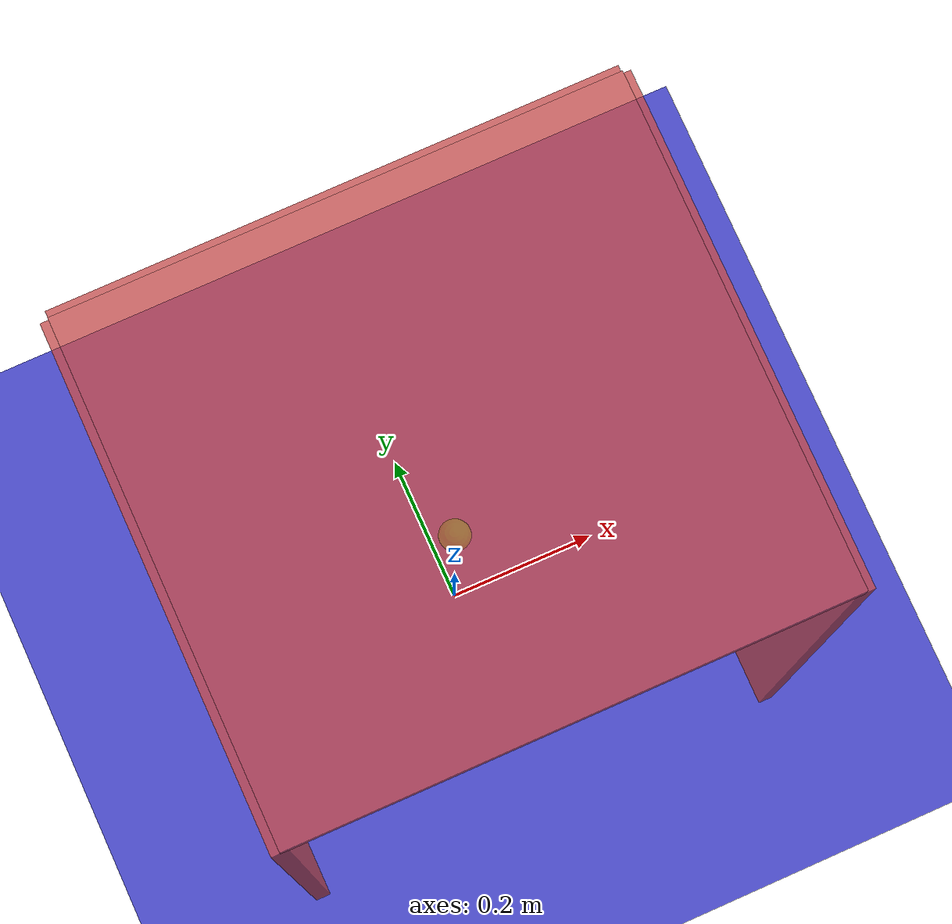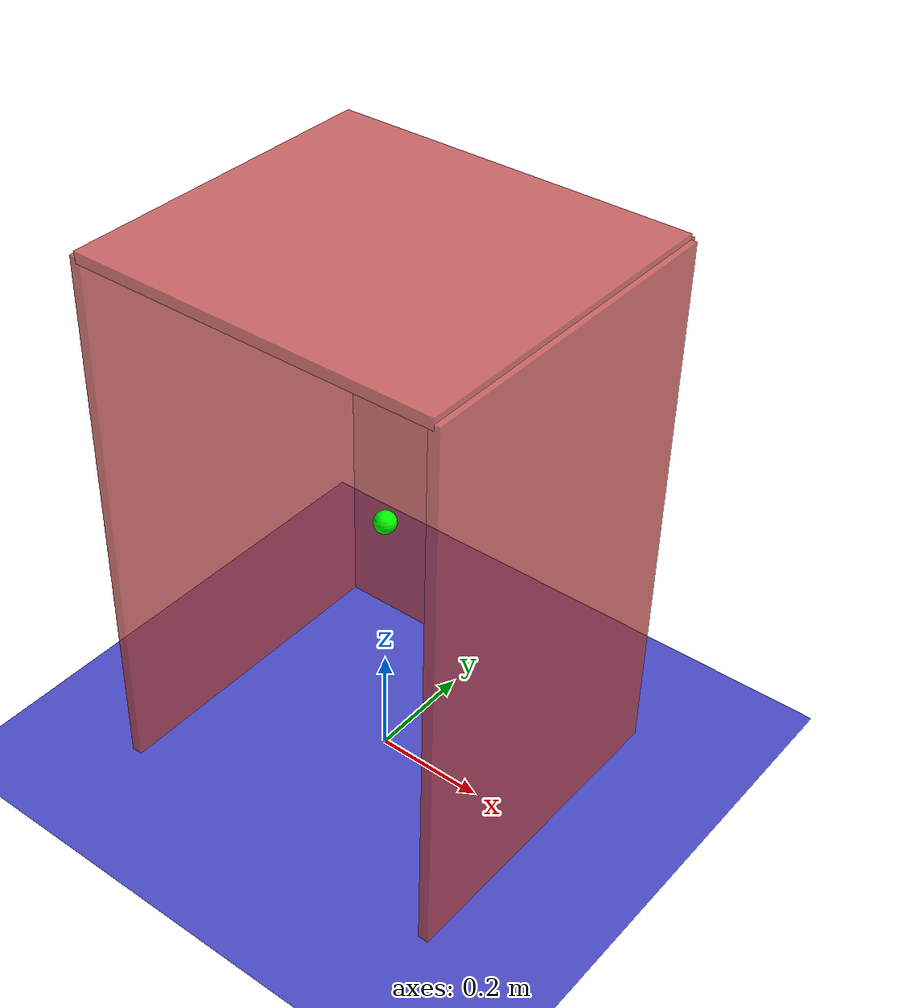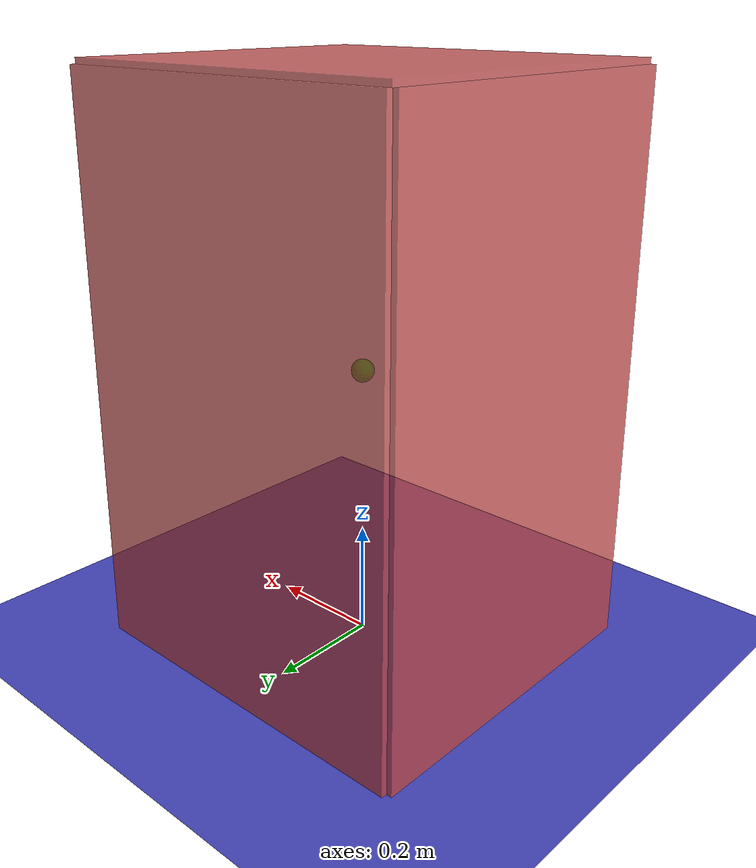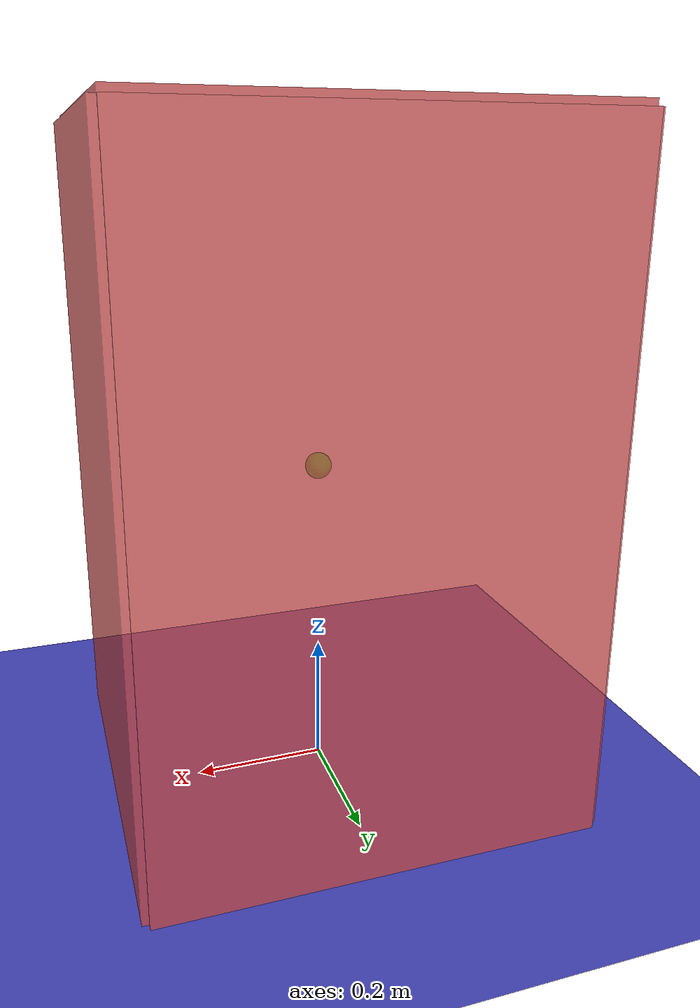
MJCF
<mujoco model="tokamak_vessel">
  <option timestep="0.002" gravity="0 0 -9.81"/>

  <asset>
    <material name="vessel_mat" rgba="0.3 0.3 0.8 0.3"/>
    <material name="port_mat" rgba="0.8 0.3 0.3 0.8"/>
    <material name="target_mat" rgba="0.0 1.0 0.0 1.0"/>
  </asset>

  <worldbody>
    <!-- Vessel floor -->
    <geom name="floor" type="plane" size="5 5 0.1" pos="0 0 0" material="vessel_mat"/>

    <!-- Tokamak port walls (650x600mm = 0.65x0.60m) -->
    <!-- Left wall -->
    <geom name="port_left"  type="box" size="0.01 0.30 0.50" pos="-0.325 0 0.50" material="port_mat"/>
    <!-- Right wall -->
    <geom name="port_right" type="box" size="0.01 0.30 0.50" pos="0.325 0 0.50"  material="port_mat"/>
    <!-- Top wall -->
    <geom name="port_top"   type="box" size="0.325 0.30 0.01" pos="0 0 1.00"     material="port_mat"/>
    <!-- Back wall -->
    <geom name="port_back"  type="box" size="0.325 0.01 0.50" pos="0 0.30 0.50"  material="port_mat"/>

    <!-- Target marker (moved by code) -->
    <body name="target" pos="0 0 0.5">
      <geom name="target_geom" type="sphere" size="0.02" material="target_mat"/>
    </body>

  </worldbody>
</mujoco>
